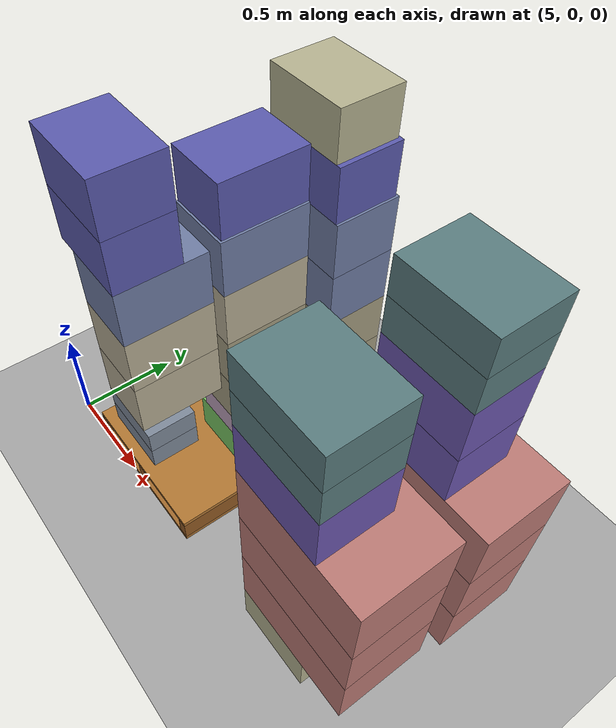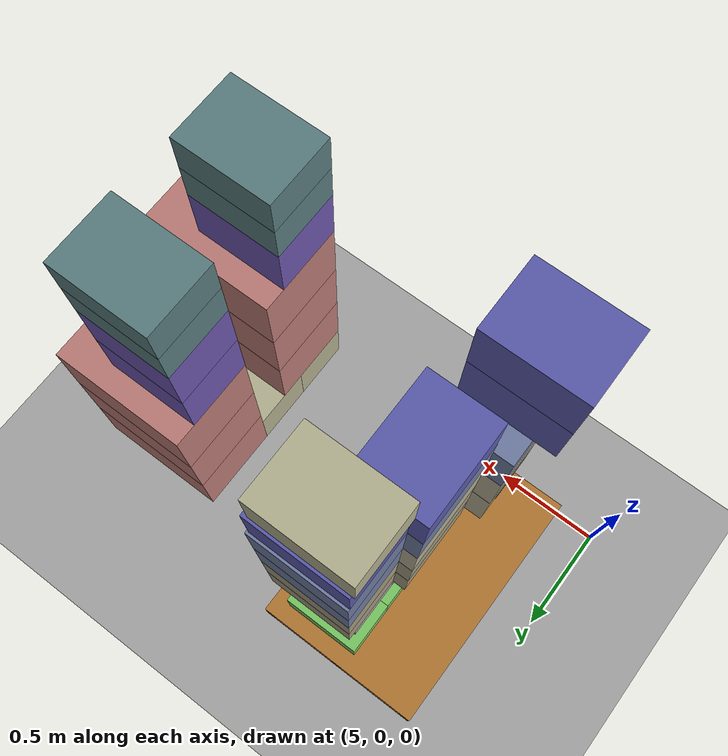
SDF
<sdf version="1.10">
 <world name="pallet_towers">
  <model name="ground_plane">
   <static>true</static>
   <link name="link">
    <collision name="collision">
     <geometry><plane><normal>0 0 1</normal><size>30 30</size></plane></geometry>
     <surface>
      <friction><ode><mu>0.55</mu><mu2>0.55</mu2></ode></friction>
      <bounce><restitution_coefficient>0</restitution_coefficient><threshold>100000</threshold></bounce>
      <contact><ode><kp>1000000</kp><kd>100</kd><max_vel>1</max_vel><min_depth>0.0005</min_depth></ode></contact>
     </surface>
    </collision>
    <visual name="visual">
     <geometry><plane><normal>0 0 1</normal><size>30 30</size></plane></geometry>
     <material><ambient>0.65 0.65 0.65 1</ambient><diffuse>0.65 0.65 0.65 1</diffuse></material>
    </visual>
   </link>
  </model>
  <model name="pallet_05_P05">
   <static>false</static>
   <pose>5.6 0.6 0.002 0 0 0</pose>
   <allow_auto_disable>false</allow_auto_disable>
   <link name="body">
    <inertial>
     <pose>0 0 0.072 0 0 0</pose>
     <mass>25</mass>
     <inertia>
      <ixx>3.07216082</ixx>
      <ixy>0</ixy>
      <ixz>0</ixz>
      <iyy>1.70896776</iyy>
      <iyz>0</iyz>
      <izz>4.63680694</izz>
     </inertia>
    </inertial>
    <collision name="bottom_deck_collision">
     <pose>0 0 0.011 0 0 0</pose>
     <geometry><box><size>0.8 1.2 0.022</size></box></geometry>
     <surface>
      <friction><ode><mu>0.55</mu><mu2>0.55</mu2></ode></friction>
      <bounce><restitution_coefficient>0</restitution_coefficient><threshold>100000</threshold></bounce>
      <contact><ode><kp>1000000</kp><kd>100</kd><max_vel>1</max_vel><min_depth>0.0005</min_depth></ode></contact>
     </surface>
    </collision>
    <visual name="bottom_deck_visual">
     <pose>0 0 0.011 0 0 0</pose>
     <geometry><box><size>0.8 1.2 0.022</size></box></geometry>
     <material>
      <ambient>0.46 0.28 0.10 1</ambient>
      <diffuse>0.64 0.42 0.18 1</diffuse>
      <specular>0.03 0.03 0.03 1</specular>
     </material>
    </visual>
    <collision name="left_stringer_collision">
     <pose>-0.375 0 0.072 0 0 0</pose>
     <geometry><box><size>0.05 1.2 0.1</size></box></geometry>
     <surface>
      <friction><ode><mu>0.55</mu><mu2>0.55</mu2></ode></friction>
      <bounce><restitution_coefficient>0</restitution_coefficient><threshold>100000</threshold></bounce>
      <contact><ode><kp>1000000</kp><kd>100</kd><max_vel>1</max_vel><min_depth>0.0005</min_depth></ode></contact>
     </surface>
    </collision>
    <visual name="left_stringer_visual">
     <pose>-0.375 0 0.072 0 0 0</pose>
     <geometry><box><size>0.05 1.2 0.1</size></box></geometry>
     <material>
      <ambient>0.42 0.25 0.09 1</ambient>
      <diffuse>0.58 0.36 0.14 1</diffuse>
      <specular>0.03 0.03 0.03 1</specular>
     </material>
    </visual>
    <collision name="centre_stringer_collision">
     <pose>0 0 0.072 0 0 0</pose>
     <geometry><box><size>0.05 1.2 0.1</size></box></geometry>
     <surface>
      <friction><ode><mu>0.55</mu><mu2>0.55</mu2></ode></friction>
      <bounce><restitution_coefficient>0</restitution_coefficient><threshold>100000</threshold></bounce>
      <contact><ode><kp>1000000</kp><kd>100</kd><max_vel>1</max_vel><min_depth>0.0005</min_depth></ode></contact>
     </surface>
    </collision>
    <visual name="centre_stringer_visual">
     <pose>0 0 0.072 0 0 0</pose>
     <geometry><box><size>0.05 1.2 0.1</size></box></geometry>
     <material>
      <ambient>0.42 0.25 0.09 1</ambient>
      <diffuse>0.58 0.36 0.14 1</diffuse>
      <specular>0.03 0.03 0.03 1</specular>
     </material>
    </visual>
    <collision name="right_stringer_collision">
     <pose>0.375 0 0.072 0 0 0</pose>
     <geometry><box><size>0.05 1.2 0.1</size></box></geometry>
     <surface>
      <friction><ode><mu>0.55</mu><mu2>0.55</mu2></ode></friction>
      <bounce><restitution_coefficient>0</restitution_coefficient><threshold>100000</threshold></bounce>
      <contact><ode><kp>1000000</kp><kd>100</kd><max_vel>1</max_vel><min_depth>0.0005</min_depth></ode></contact>
     </surface>
    </collision>
    <visual name="right_stringer_visual">
     <pose>0.375 0 0.072 0 0 0</pose>
     <geometry><box><size>0.05 1.2 0.1</size></box></geometry>
     <material>
      <ambient>0.42 0.25 0.09 1</ambient>
      <diffuse>0.58 0.36 0.14 1</diffuse>
      <specular>0.03 0.03 0.03 1</specular>
     </material>
    </visual>
    <collision name="top_deck_collision">
     <pose>0 0 0.133 0 0 0</pose>
     <geometry><box><size>0.8 1.2 0.022</size></box></geometry>
     <surface>
      <friction><ode><mu>0.55</mu><mu2>0.55</mu2></ode></friction>
      <bounce><restitution_coefficient>0</restitution_coefficient><threshold>100000</threshold></bounce>
      <contact><ode><kp>1000000</kp><kd>100</kd><max_vel>1</max_vel><min_depth>0.0005</min_depth></ode></contact>
     </surface>
    </collision>
    <visual name="top_deck_visual">
     <pose>0 0 0.133 0 0 0</pose>
     <geometry><box><size>0.8 1.2 0.022</size></box></geometry>
     <material>
      <ambient>0.50 0.31 0.11 1</ambient>
      <diffuse>0.70 0.47 0.20 1</diffuse>
      <specular>0.03 0.03 0.03 1</specular>
     </material>
    </visual>
   </link>
  </model>
  <model name="box_p05_0003_TEA_002_TEA">
   <static>false</static>
   <pose>5.74 0.52 0.246 0 0 0</pose>
   <link name="body">
    <inertial>
     <mass>5</mass>
     <inertia>
      <ixx>0.0406666667</ixx>
      <ixy>0</ixy>
      <ixz>0</ixz>
      <iyy>0.0706666667</iyy>
      <iyz>0</iyz>
      <izz>0.078</izz>
     </inertia>
    </inertial>
    <collision name="collision">
     <geometry><box><size>0.36 0.24 0.2</size></box></geometry>
     <surface>
      <friction><ode><mu>0.55</mu><mu2>0.55</mu2></ode></friction>
      <bounce><restitution_coefficient>0</restitution_coefficient><threshold>100000</threshold></bounce>
      <contact><ode><kp>1000000</kp><kd>100</kd><max_vel>1</max_vel><min_depth>0.0005</min_depth></ode></contact>
     </surface>
    </collision>
    <visual name="visual">
     <geometry><box><size>0.36 0.24 0.2</size></box></geometry>
     <material>
      <ambient>0.478431373 0.788235294 0.388235294 1</ambient>
      <diffuse>0.478431373 0.788235294 0.388235294 1</diffuse>
      <specular>0.05 0.05 0.05 1</specular>
     </material>
    </visual>
   </link>
  </model>
  <model name="box_p05_0005_TEA_004_TEA">
   <static>false</static>
   <pose>5.74 0.76 0.246 0 0 0</pose>
   <link name="body">
    <inertial>
     <mass>5</mass>
     <inertia>
      <ixx>0.0406666667</ixx>
      <ixy>0</ixy>
      <ixz>0</ixz>
      <iyy>0.0706666667</iyy>
      <iyz>0</iyz>
      <izz>0.078</izz>
     </inertia>
    </inertial>
    <collision name="collision">
     <geometry><box><size>0.36 0.24 0.2</size></box></geometry>
     <surface>
      <friction><ode><mu>0.55</mu><mu2>0.55</mu2></ode></friction>
      <bounce><restitution_coefficient>0</restitution_coefficient><threshold>100000</threshold></bounce>
      <contact><ode><kp>1000000</kp><kd>100</kd><max_vel>1</max_vel><min_depth>0.0005</min_depth></ode></contact>
     </surface>
    </collision>
    <visual name="visual">
     <geometry><box><size>0.36 0.24 0.2</size></box></geometry>
     <material>
      <ambient>0.478431373 0.788235294 0.388235294 1</ambient>
      <diffuse>0.478431373 0.788235294 0.388235294 1</diffuse>
      <specular>0.05 0.05 0.05 1</specular>
     </material>
    </visual>
   </link>
  </model>
  <model name="box_p05_0007_TEA_006_TEA">
   <static>false</static>
   <pose>5.74 1 0.246 0 0 0</pose>
   <link name="body">
    <inertial>
     <mass>5</mass>
     <inertia>
      <ixx>0.0406666667</ixx>
      <ixy>0</ixy>
      <ixz>0</ixz>
      <iyy>0.0706666667</iyy>
      <iyz>0</iyz>
      <izz>0.078</izz>
     </inertia>
    </inertial>
    <collision name="collision">
     <geometry><box><size>0.36 0.24 0.2</size></box></geometry>
     <surface>
      <friction><ode><mu>0.55</mu><mu2>0.55</mu2></ode></friction>
      <bounce><restitution_coefficient>0</restitution_coefficient><threshold>100000</threshold></bounce>
      <contact><ode><kp>1000000</kp><kd>100</kd><max_vel>1</max_vel><min_depth>0.0005</min_depth></ode></contact>
     </surface>
    </collision>
    <visual name="visual">
     <geometry><box><size>0.36 0.24 0.2</size></box></geometry>
     <material>
      <ambient>0.478431373 0.788235294 0.388235294 1</ambient>
      <diffuse>0.478431373 0.788235294 0.388235294 1</diffuse>
      <specular>0.05 0.05 0.05 1</specular>
     </material>
    </visual>
   </link>
  </model>
  <model name="box_p05_0009_BEER24_002_BEER24">
   <static>false</static>
   <pose>5.73 0.6 0.411 0 0 0</pose>
   <link name="body">
    <inertial>
     <mass>9</mass>
     <inertia><ixx>0.132675</ixx><ixy>0</ixy><ixz>0</ixz><iyy>0.063375</iyy><iyz>0</iyz><izz>0.1707</izz></inertia>
    </inertial>
    <collision name="collision">
     <geometry><box><size>0.26 0.4 0.13</size></box></geometry>
     <surface>
      <friction><ode><mu>0.55</mu><mu2>0.55</mu2></ode></friction>
      <bounce><restitution_coefficient>0</restitution_coefficient><threshold>100000</threshold></bounce>
      <contact><ode><kp>1000000</kp><kd>100</kd><max_vel>1</max_vel><min_depth>0.0005</min_depth></ode></contact>
     </surface>
    </collision>
    <visual name="visual">
     <geometry><box><size>0.26 0.4 0.13</size></box></geometry>
     <material>
      <ambient>0.741176471 0.62745098 0.737254902 1</ambient>
      <diffuse>0.741176471 0.62745098 0.737254902 1</diffuse>
      <specular>0.05 0.05 0.05 1</specular>
     </material>
    </visual>
   </link>
  </model>
  <model name="box_p05_0011_BEER24_004_BEER24">
   <static>false</static>
   <pose>5.8 0.93 0.411 0 0 0</pose>
   <link name="body">
    <inertial>
     <mass>9</mass>
     <inertia><ixx>0.063375</ixx><ixy>0</ixy><ixz>0</ixz><iyy>0.132675</iyy><iyz>0</iyz><izz>0.1707</izz></inertia>
    </inertial>
    <collision name="collision">
     <geometry><box><size>0.4 0.26 0.13</size></box></geometry>
     <surface>
      <friction><ode><mu>0.55</mu><mu2>0.55</mu2></ode></friction>
      <bounce><restitution_coefficient>0</restitution_coefficient><threshold>100000</threshold></bounce>
      <contact><ode><kp>1000000</kp><kd>100</kd><max_vel>1</max_vel><min_depth>0.0005</min_depth></ode></contact>
     </surface>
    </collision>
    <visual name="visual">
     <geometry><box><size>0.4 0.26 0.13</size></box></geometry>
     <material>
      <ambient>0.741176471 0.62745098 0.737254902 1</ambient>
      <diffuse>0.741176471 0.62745098 0.737254902 1</diffuse>
      <specular>0.05 0.05 0.05 1</specular>
     </material>
    </visual>
   </link>
  </model>
  <model name="box_p05_0014_DOGFOOD_001_DOGFOOD">
   <static>false</static>
   <pose>5.63 0.115 0.451 0 0 0</pose>
   <link name="body">
    <inertial>
     <mass>8</mass>
     <inertia>
      <ixx>0.0433333333</ixx>
      <ixy>0</ixy>
      <ixz>0</ixz>
      <iyy>0.0851333333</iyy>
      <iyz>0</iyz>
      <izz>0.112333333</izz>
     </inertia>
    </inertial>
    <collision name="collision">
     <geometry><box><size>0.34 0.23 0.11</size></box></geometry>
     <surface>
      <friction><ode><mu>0.55</mu><mu2>0.55</mu2></ode></friction>
      <bounce><restitution_coefficient>0</restitution_coefficient><threshold>100000</threshold></bounce>
      <contact><ode><kp>1000000</kp><kd>100</kd><max_vel>1</max_vel><min_depth>0.0005</min_depth></ode></contact>
     </surface>
    </collision>
    <visual name="visual">
     <geometry><box><size>0.34 0.23 0.11</size></box></geometry>
     <material>
      <ambient>0.498039216 0.545098039 0.607843137 1</ambient>
      <diffuse>0.498039216 0.545098039 0.607843137 1</diffuse>
      <specular>0.05 0.05 0.05 1</specular>
     </material>
    </visual>
   </link>
  </model>
  <model name="box_p05_0015_DOGFOOD_002_DOGFOOD">
   <static>false</static>
   <pose>5.63 0.115 0.561 0 0 0</pose>
   <link name="body">
    <inertial>
     <mass>8</mass>
     <inertia>
      <ixx>0.0433333333</ixx>
      <ixy>0</ixy>
      <ixz>0</ixz>
      <iyy>0.0851333333</iyy>
      <iyz>0</iyz>
      <izz>0.112333333</izz>
     </inertia>
    </inertial>
    <collision name="collision">
     <geometry><box><size>0.34 0.23 0.11</size></box></geometry>
     <surface>
      <friction><ode><mu>0.55</mu><mu2>0.55</mu2></ode></friction>
      <bounce><restitution_coefficient>0</restitution_coefficient><threshold>100000</threshold></bounce>
      <contact><ode><kp>1000000</kp><kd>100</kd><max_vel>1</max_vel><min_depth>0.0005</min_depth></ode></contact>
     </surface>
    </collision>
    <visual name="visual">
     <geometry><box><size>0.34 0.23 0.11</size></box></geometry>
     <material>
      <ambient>0.498039216 0.545098039 0.607843137 1</ambient>
      <diffuse>0.498039216 0.545098039 0.607843137 1</diffuse>
      <specular>0.05 0.05 0.05 1</specular>
     </material>
    </visual>
   </link>
  </model>
  <model name="box_p05_0020_MILK12_001_MILK12">
   <static>false</static>
   <pose>5.69 0.6 0.601 0 0 0</pose>
   <link name="body">
    <inertial>
     <mass>12.5</mass>
     <inertia>
      <ixx>0.231770833</ixx>
      <ixy>0</ixy>
      <ixz>0</ixz>
      <iyy>0.158854167</iyy>
      <iyz>0</iyz>
      <izz>0.260416667</izz>
     </inertia>
    </inertial>
    <collision name="collision">
     <geometry><box><size>0.3 0.4 0.25</size></box></geometry>
     <surface>
      <friction><ode><mu>0.55</mu><mu2>0.55</mu2></ode></friction>
      <bounce><restitution_coefficient>0</restitution_coefficient><threshold>100000</threshold></bounce>
      <contact><ode><kp>1000000</kp><kd>100</kd><max_vel>1</max_vel><min_depth>0.0005</min_depth></ode></contact>
     </surface>
    </collision>
    <visual name="visual">
     <geometry><box><size>0.3 0.4 0.25</size></box></geometry>
     <material>
      <ambient>0.647058824 0.615686275 0.505882353 1</ambient>
      <diffuse>0.647058824 0.615686275 0.505882353 1</diffuse>
      <specular>0.05 0.05 0.05 1</specular>
     </material>
    </visual>
   </link>
  </model>
  <model name="box_p05_0022_MILK12_003_MILK12">
   <static>false</static>
   <pose>5.8 0.95 0.601 0 0 0</pose>
   <link name="body">
    <inertial>
     <mass>12.5</mass>
     <inertia>
      <ixx>0.158854167</ixx>
      <ixy>0</ixy>
      <ixz>0</ixz>
      <iyy>0.231770833</iyy>
      <iyz>0</iyz>
      <izz>0.260416667</izz>
     </inertia>
    </inertial>
    <collision name="collision">
     <geometry><box><size>0.4 0.3 0.25</size></box></geometry>
     <surface>
      <friction><ode><mu>0.55</mu><mu2>0.55</mu2></ode></friction>
      <bounce><restitution_coefficient>0</restitution_coefficient><threshold>100000</threshold></bounce>
      <contact><ode><kp>1000000</kp><kd>100</kd><max_vel>1</max_vel><min_depth>0.0005</min_depth></ode></contact>
     </surface>
    </collision>
    <visual name="visual">
     <geometry><box><size>0.4 0.3 0.25</size></box></geometry>
     <material>
      <ambient>0.647058824 0.615686275 0.505882353 1</ambient>
      <diffuse>0.647058824 0.615686275 0.505882353 1</diffuse>
      <specular>0.05 0.05 0.05 1</specular>
     </material>
    </visual>
   </link>
  </model>
  <model name="box_p05_0023_MILK12_004_MILK12">
   <static>false</static>
   <pose>5.69 0.6 0.851 0 0 0</pose>
   <link name="body">
    <inertial>
     <mass>12.5</mass>
     <inertia>
      <ixx>0.231770833</ixx>
      <ixy>0</ixy>
      <ixz>0</ixz>
      <iyy>0.158854167</iyy>
      <iyz>0</iyz>
      <izz>0.260416667</izz>
     </inertia>
    </inertial>
    <collision name="collision">
     <geometry><box><size>0.3 0.4 0.25</size></box></geometry>
     <surface>
      <friction><ode><mu>0.55</mu><mu2>0.55</mu2></ode></friction>
      <bounce><restitution_coefficient>0</restitution_coefficient><threshold>100000</threshold></bounce>
      <contact><ode><kp>1000000</kp><kd>100</kd><max_vel>1</max_vel><min_depth>0.0005</min_depth></ode></contact>
     </surface>
    </collision>
    <visual name="visual">
     <geometry><box><size>0.3 0.4 0.25</size></box></geometry>
     <material>
      <ambient>0.647058824 0.615686275 0.505882353 1</ambient>
      <diffuse>0.647058824 0.615686275 0.505882353 1</diffuse>
      <specular>0.05 0.05 0.05 1</specular>
     </material>
    </visual>
   </link>
  </model>
  <model name="box_p05_0025_MILK12_006_MILK12">
   <static>false</static>
   <pose>5.8 0.95 0.851 0 0 0</pose>
   <link name="body">
    <inertial>
     <mass>12.5</mass>
     <inertia>
      <ixx>0.158854167</ixx>
      <ixy>0</ixy>
      <ixz>0</ixz>
      <iyy>0.231770833</iyy>
      <iyz>0</iyz>
      <izz>0.260416667</izz>
     </inertia>
    </inertial>
    <collision name="collision">
     <geometry><box><size>0.4 0.3 0.25</size></box></geometry>
     <surface>
      <friction><ode><mu>0.55</mu><mu2>0.55</mu2></ode></friction>
      <bounce><restitution_coefficient>0</restitution_coefficient><threshold>100000</threshold></bounce>
      <contact><ode><kp>1000000</kp><kd>100</kd><max_vel>1</max_vel><min_depth>0.0005</min_depth></ode></contact>
     </surface>
    </collision>
    <visual name="visual">
     <geometry><box><size>0.4 0.3 0.25</size></box></geometry>
     <material>
      <ambient>0.647058824 0.615686275 0.505882353 1</ambient>
      <diffuse>0.647058824 0.615686275 0.505882353 1</diffuse>
      <specular>0.05 0.05 0.05 1</specular>
     </material>
    </visual>
   </link>
  </model>
  <model name="box_p05_0027_WATER24_002_WATER24">
   <static>false</static>
   <pose>5.61 0.2 0.751 0 0 0</pose>
   <link name="body">
    <inertial>
     <mass>13</mass>
     <inertia>
      <ixx>0.252308333</ixx>
      <ixy>0</ixy>
      <ixz>0</ixz>
      <iyy>0.176475</iyy>
      <iyz>0</iyz>
      <izz>0.270833333</izz>
     </inertia>
    </inertial>
    <collision name="collision">
     <geometry><box><size>0.3 0.4 0.27</size></box></geometry>
     <surface>
      <friction><ode><mu>0.55</mu><mu2>0.55</mu2></ode></friction>
      <bounce><restitution_coefficient>0</restitution_coefficient><threshold>100000</threshold></bounce>
      <contact><ode><kp>1000000</kp><kd>100</kd><max_vel>1</max_vel><min_depth>0.0005</min_depth></ode></contact>
     </surface>
    </collision>
    <visual name="visual">
     <geometry><box><size>0.3 0.4 0.27</size></box></geometry>
     <material>
      <ambient>0.721568627 0.68627451 0.584313725 1</ambient>
      <diffuse>0.721568627 0.68627451 0.584313725 1</diffuse>
      <specular>0.05 0.05 0.05 1</specular>
     </material>
    </visual>
   </link>
  </model>
  <model name="box_p05_0029_WATER24_004_WATER24">
   <static>false</static>
   <pose>5.61 0.2 1.021 0 0 0</pose>
   <link name="body">
    <inertial>
     <mass>13</mass>
     <inertia>
      <ixx>0.252308333</ixx>
      <ixy>0</ixy>
      <ixz>0</ixz>
      <iyy>0.176475</iyy>
      <iyz>0</iyz>
      <izz>0.270833333</izz>
     </inertia>
    </inertial>
    <collision name="collision">
     <geometry><box><size>0.3 0.4 0.27</size></box></geometry>
     <surface>
      <friction><ode><mu>0.55</mu><mu2>0.55</mu2></ode></friction>
      <bounce><restitution_coefficient>0</restitution_coefficient><threshold>100000</threshold></bounce>
      <contact><ode><kp>1000000</kp><kd>100</kd><max_vel>1</max_vel><min_depth>0.0005</min_depth></ode></contact>
     </surface>
    </collision>
    <visual name="visual">
     <geometry><box><size>0.3 0.4 0.27</size></box></geometry>
     <material>
      <ambient>0.721568627 0.68627451 0.584313725 1</ambient>
      <diffuse>0.721568627 0.68627451 0.584313725 1</diffuse>
      <specular>0.05 0.05 0.05 1</specular>
     </material>
    </visual>
   </link>
  </model>
  <model name="box_p05_0030_WATER24_005_WATER24">
   <static>false</static>
   <pose>5.69 0.6 1.111 0 0 0</pose>
   <link name="body">
    <inertial>
     <mass>13</mass>
     <inertia>
      <ixx>0.252308333</ixx>
      <ixy>0</ixy>
      <ixz>0</ixz>
      <iyy>0.176475</iyy>
      <iyz>0</iyz>
      <izz>0.270833333</izz>
     </inertia>
    </inertial>
    <collision name="collision">
     <geometry><box><size>0.3 0.4 0.27</size></box></geometry>
     <surface>
      <friction><ode><mu>0.55</mu><mu2>0.55</mu2></ode></friction>
      <bounce><restitution_coefficient>0</restitution_coefficient><threshold>100000</threshold></bounce>
      <contact><ode><kp>1000000</kp><kd>100</kd><max_vel>1</max_vel><min_depth>0.0005</min_depth></ode></contact>
     </surface>
    </collision>
    <visual name="visual">
     <geometry><box><size>0.3 0.4 0.27</size></box></geometry>
     <material>
      <ambient>0.721568627 0.68627451 0.584313725 1</ambient>
      <diffuse>0.721568627 0.68627451 0.584313725 1</diffuse>
      <specular>0.05 0.05 0.05 1</specular>
     </material>
    </visual>
   </link>
  </model>
  <model name="box_p05_0032_COLA24_001_COLA24">
   <static>false</static>
   <pose>5.8 0.95 1.106 0 0 0</pose>
   <link name="body">
    <inertial>
     <mass>13.5</mass>
     <inertia><ixx>0.1773</ixx><ixy>0</ixy><ixz>0</ixz><iyy>0.25605</iyy><iyz>0</iyz><izz>0.28125</izz></inertia>
    </inertial>
    <collision name="collision">
     <geometry><box><size>0.4 0.3 0.26</size></box></geometry>
     <surface>
      <friction><ode><mu>0.55</mu><mu2>0.55</mu2></ode></friction>
      <bounce><restitution_coefficient>0</restitution_coefficient><threshold>100000</threshold></bounce>
      <contact><ode><kp>1000000</kp><kd>100</kd><max_vel>1</max_vel><min_depth>0.0005</min_depth></ode></contact>
     </surface>
    </collision>
    <visual name="visual">
     <geometry><box><size>0.4 0.3 0.26</size></box></geometry>
     <material>
      <ambient>0.439215686 0.494117647 0.647058824 1</ambient>
      <diffuse>0.439215686 0.494117647 0.647058824 1</diffuse>
      <specular>0.05 0.05 0.05 1</specular>
     </material>
    </visual>
   </link>
  </model>
  <model name="box_p05_0033_COLA24_002_COLA24">
   <static>false</static>
   <pose>5.8 0.95 1.366 0 0 0</pose>
   <link name="body">
    <inertial>
     <mass>13.5</mass>
     <inertia><ixx>0.1773</ixx><ixy>0</ixy><ixz>0</ixz><iyy>0.25605</iyy><iyz>0</iyz><izz>0.28125</izz></inertia>
    </inertial>
    <collision name="collision">
     <geometry><box><size>0.4 0.3 0.26</size></box></geometry>
     <surface>
      <friction><ode><mu>0.55</mu><mu2>0.55</mu2></ode></friction>
      <bounce><restitution_coefficient>0</restitution_coefficient><threshold>100000</threshold></bounce>
      <contact><ode><kp>1000000</kp><kd>100</kd><max_vel>1</max_vel><min_depth>0.0005</min_depth></ode></contact>
     </surface>
    </collision>
    <visual name="visual">
     <geometry><box><size>0.4 0.3 0.26</size></box></geometry>
     <material>
      <ambient>0.439215686 0.494117647 0.647058824 1</ambient>
      <diffuse>0.439215686 0.494117647 0.647058824 1</diffuse>
      <specular>0.05 0.05 0.05 1</specular>
     </material>
    </visual>
   </link>
  </model>
  <model name="box_p05_0035_COLA24_004_COLA24">
   <static>false</static>
   <pose>5.61 0.2 1.286 0 0 0</pose>
   <link name="body">
    <inertial>
     <mass>13.5</mass>
     <inertia><ixx>0.25605</ixx><ixy>0</ixy><ixz>0</ixz><iyy>0.1773</iyy><iyz>0</iyz><izz>0.28125</izz></inertia>
    </inertial>
    <collision name="collision">
     <geometry><box><size>0.3 0.4 0.26</size></box></geometry>
     <surface>
      <friction><ode><mu>0.55</mu><mu2>0.55</mu2></ode></friction>
      <bounce><restitution_coefficient>0</restitution_coefficient><threshold>100000</threshold></bounce>
      <contact><ode><kp>1000000</kp><kd>100</kd><max_vel>1</max_vel><min_depth>0.0005</min_depth></ode></contact>
     </surface>
    </collision>
    <visual name="visual">
     <geometry><box><size>0.3 0.4 0.26</size></box></geometry>
     <material>
      <ambient>0.439215686 0.494117647 0.647058824 1</ambient>
      <diffuse>0.439215686 0.494117647 0.647058824 1</diffuse>
      <specular>0.05 0.05 0.05 1</specular>
     </material>
    </visual>
   </link>
  </model>
  <model name="box_p05_0036_COLA24_005_COLA24">
   <static>false</static>
   <pose>5.69 0.6 1.376 0 0 0</pose>
   <link name="body">
    <inertial>
     <mass>13.5</mass>
     <inertia><ixx>0.25605</ixx><ixy>0</ixy><ixz>0</ixz><iyy>0.1773</iyy><iyz>0</iyz><izz>0.28125</izz></inertia>
    </inertial>
    <collision name="collision">
     <geometry><box><size>0.3 0.4 0.26</size></box></geometry>
     <surface>
      <friction><ode><mu>0.55</mu><mu2>0.55</mu2></ode></friction>
      <bounce><restitution_coefficient>0</restitution_coefficient><threshold>100000</threshold></bounce>
      <contact><ode><kp>1000000</kp><kd>100</kd><max_vel>1</max_vel><min_depth>0.0005</min_depth></ode></contact>
     </surface>
    </collision>
    <visual name="visual">
     <geometry><box><size>0.3 0.4 0.26</size></box></geometry>
     <material>
      <ambient>0.439215686 0.494117647 0.647058824 1</ambient>
      <diffuse>0.439215686 0.494117647 0.647058824 1</diffuse>
      <specular>0.05 0.05 0.05 1</specular>
     </material>
    </visual>
   </link>
  </model>
  <model name="box_p05_0039_PASTA_002_PASTA">
   <static>false</static>
   <pose>5.565 0.145 1.536 0 0 0</pose>
   <link name="body">
    <inertial>
     <mass>8</mass>
     <inertia>
      <ixx>0.0944666667</ixx>
      <ixy>0</ixy>
      <ixz>0</ixz>
      <iyy>0.1398</iyy>
      <iyz>0</iyz>
      <izz>0.157466667</izz>
     </inertia>
    </inertial>
    <collision name="collision">
     <geometry><box><size>0.39 0.29 0.24</size></box></geometry>
     <surface>
      <friction><ode><mu>0.55</mu><mu2>0.55</mu2></ode></friction>
      <bounce><restitution_coefficient>0</restitution_coefficient><threshold>100000</threshold></bounce>
      <contact><ode><kp>1000000</kp><kd>100</kd><max_vel>1</max_vel><min_depth>0.0005</min_depth></ode></contact>
     </surface>
    </collision>
    <visual name="visual">
     <geometry><box><size>0.39 0.29 0.24</size></box></geometry>
     <material>
      <ambient>0.356862745 0.356862745 0.682352941 1</ambient>
      <diffuse>0.356862745 0.356862745 0.682352941 1</diffuse>
      <specular>0.05 0.05 0.05 1</specular>
     </material>
    </visual>
   </link>
  </model>
  <model name="box_p05_0041_PASTA_004_PASTA">
   <static>false</static>
   <pose>5.795 0.945 1.616 0 0 0</pose>
   <link name="body">
    <inertial>
     <mass>8</mass>
     <inertia>
      <ixx>0.0944666667</ixx>
      <ixy>0</ixy>
      <ixz>0</ixz>
      <iyy>0.1398</iyy>
      <iyz>0</iyz>
      <izz>0.157466667</izz>
     </inertia>
    </inertial>
    <collision name="collision">
     <geometry><box><size>0.39 0.29 0.24</size></box></geometry>
     <surface>
      <friction><ode><mu>0.55</mu><mu2>0.55</mu2></ode></friction>
      <bounce><restitution_coefficient>0</restitution_coefficient><threshold>100000</threshold></bounce>
      <contact><ode><kp>1000000</kp><kd>100</kd><max_vel>1</max_vel><min_depth>0.0005</min_depth></ode></contact>
     </surface>
    </collision>
    <visual name="visual">
     <geometry><box><size>0.39 0.29 0.24</size></box></geometry>
     <material>
      <ambient>0.356862745 0.356862745 0.682352941 1</ambient>
      <diffuse>0.356862745 0.356862745 0.682352941 1</diffuse>
      <specular>0.05 0.05 0.05 1</specular>
     </material>
    </visual>
   </link>
  </model>
  <model name="box_p05_0042_PASTA_005_PASTA">
   <static>false</static>
   <pose>5.685 0.605 1.626 0 0 0</pose>
   <link name="body">
    <inertial>
     <mass>8</mass>
     <inertia>
      <ixx>0.1398</ixx>
      <ixy>0</ixy>
      <ixz>0</ixz>
      <iyy>0.0944666667</iyy>
      <iyz>0</iyz>
      <izz>0.157466667</izz>
     </inertia>
    </inertial>
    <collision name="collision">
     <geometry><box><size>0.29 0.39 0.24</size></box></geometry>
     <surface>
      <friction><ode><mu>0.55</mu><mu2>0.55</mu2></ode></friction>
      <bounce><restitution_coefficient>0</restitution_coefficient><threshold>100000</threshold></bounce>
      <contact><ode><kp>1000000</kp><kd>100</kd><max_vel>1</max_vel><min_depth>0.0005</min_depth></ode></contact>
     </surface>
    </collision>
    <visual name="visual">
     <geometry><box><size>0.29 0.39 0.24</size></box></geometry>
     <material>
      <ambient>0.356862745 0.356862745 0.682352941 1</ambient>
      <diffuse>0.356862745 0.356862745 0.682352941 1</diffuse>
      <specular>0.05 0.05 0.05 1</specular>
     </material>
    </visual>
   </link>
  </model>
  <model name="box_p05_0043_PASTA_006_PASTA">
   <static>false</static>
   <pose>5.565 0.145 1.776 0 0 0</pose>
   <link name="body">
    <inertial>
     <mass>8</mass>
     <inertia>
      <ixx>0.0944666667</ixx>
      <ixy>0</ixy>
      <ixz>0</ixz>
      <iyy>0.1398</iyy>
      <iyz>0</iyz>
      <izz>0.157466667</izz>
     </inertia>
    </inertial>
    <collision name="collision">
     <geometry><box><size>0.39 0.29 0.24</size></box></geometry>
     <surface>
      <friction><ode><mu>0.55</mu><mu2>0.55</mu2></ode></friction>
      <bounce><restitution_coefficient>0</restitution_coefficient><threshold>100000</threshold></bounce>
      <contact><ode><kp>1000000</kp><kd>100</kd><max_vel>1</max_vel><min_depth>0.0005</min_depth></ode></contact>
     </surface>
    </collision>
    <visual name="visual">
     <geometry><box><size>0.39 0.29 0.24</size></box></geometry>
     <material>
      <ambient>0.356862745 0.356862745 0.682352941 1</ambient>
      <diffuse>0.356862745 0.356862745 0.682352941 1</diffuse>
      <specular>0.05 0.05 0.05 1</specular>
     </material>
    </visual>
   </link>
  </model>
  <model name="box_p05_0045_TOMATO_002_TOMATO">
   <static>false</static>
   <pose>5.78 0.94 1.841 0 0 0</pose>
   <link name="body">
    <inertial>
     <mass>9</mass>
     <inertia><ixx>0.091875</ixx><ixy>0</ixy><ixz>0</ixz><iyy>0.141375</iyy><iyz>0</iyz><izz>0.1671</izz></inertia>
    </inertial>
    <collision name="collision">
     <geometry><box><size>0.38 0.28 0.21</size></box></geometry>
     <surface>
      <friction><ode><mu>0.55</mu><mu2>0.55</mu2></ode></friction>
      <bounce><restitution_coefficient>0</restitution_coefficient><threshold>100000</threshold></bounce>
      <contact><ode><kp>1000000</kp><kd>100</kd><max_vel>1</max_vel><min_depth>0.0005</min_depth></ode></contact>
     </surface>
    </collision>
    <visual name="visual">
     <geometry><box><size>0.38 0.28 0.21</size></box></geometry>
     <material>
      <ambient>0.71372549 0.701960784 0.568627451 1</ambient>
      <diffuse>0.71372549 0.701960784 0.568627451 1</diffuse>
      <specular>0.05 0.05 0.05 1</specular>
     </material>
    </visual>
   </link>
  </model>
  <model name="box_p06_0001_TOMATO_003_TOMATO">
   <static>false</static>
   <pose>6.69 0.14 0.251 0 0 0</pose>
   <link name="body">
    <inertial>
     <mass>9</mass>
     <inertia><ixx>0.091875</ixx><ixy>0</ixy><ixz>0</ixz><iyy>0.141375</iyy><iyz>0</iyz><izz>0.1671</izz></inertia>
    </inertial>
    <collision name="collision">
     <geometry><box><size>0.38 0.28 0.21</size></box></geometry>
     <surface>
      <friction><ode><mu>0.55</mu><mu2>0.55</mu2></ode></friction>
      <bounce><restitution_coefficient>0</restitution_coefficient><threshold>100000</threshold></bounce>
      <contact><ode><kp>1000000</kp><kd>100</kd><max_vel>1</max_vel><min_depth>0.0005</min_depth></ode></contact>
     </surface>
    </collision>
    <visual name="visual">
     <geometry><box><size>0.38 0.28 0.21</size></box></geometry>
     <material>
      <ambient>0.71372549 0.701960784 0.568627451 1</ambient>
      <diffuse>0.71372549 0.701960784 0.568627451 1</diffuse>
      <specular>0.05 0.05 0.05 1</specular>
     </material>
    </visual>
   </link>
  </model>
  <model name="box_p06_0003_TOMATO_005_TOMATO">
   <static>false</static>
   <pose>6.69 0.42 0.251 0 0 0</pose>
   <link name="body">
    <inertial>
     <mass>9</mass>
     <inertia><ixx>0.091875</ixx><ixy>0</ixy><ixz>0</ixz><iyy>0.141375</iyy><iyz>0</iyz><izz>0.1671</izz></inertia>
    </inertial>
    <collision name="collision">
     <geometry><box><size>0.38 0.28 0.21</size></box></geometry>
     <surface>
      <friction><ode><mu>0.55</mu><mu2>0.55</mu2></ode></friction>
      <bounce><restitution_coefficient>0</restitution_coefficient><threshold>100000</threshold></bounce>
      <contact><ode><kp>1000000</kp><kd>100</kd><max_vel>1</max_vel><min_depth>0.0005</min_depth></ode></contact>
     </surface>
    </collision>
    <visual name="visual">
     <geometry><box><size>0.38 0.28 0.21</size></box></geometry>
     <material>
      <ambient>0.71372549 0.701960784 0.568627451 1</ambient>
      <diffuse>0.71372549 0.701960784 0.568627451 1</diffuse>
      <specular>0.05 0.05 0.05 1</specular>
     </material>
    </visual>
   </link>
  </model>
  <model name="box_p06_0005_CEREAL_001_CEREAL">
   <static>false</static>
   <pose>6.8 0.76 0.296 0 0 0</pose>
   <link name="body">
    <inertial>
     <mass>4</mass>
     <inertia>
      <ixx>0.0833333333</ixx>
      <ixy>0</ixy>
      <ixz>0</ixz>
      <iyy>0.15</iyy>
      <iyz>0</iyz>
      <izz>0.173333333</izz>
     </inertia>
    </inertial>
    <collision name="collision">
     <geometry><box><size>0.6 0.4 0.3</size></box></geometry>
     <surface>
      <friction><ode><mu>0.55</mu><mu2>0.55</mu2></ode></friction>
      <bounce><restitution_coefficient>0</restitution_coefficient><threshold>100000</threshold></bounce>
      <contact><ode><kp>1000000</kp><kd>100</kd><max_vel>1</max_vel><min_depth>0.0005</min_depth></ode></contact>
     </surface>
    </collision>
    <visual name="visual">
     <geometry><box><size>0.6 0.4 0.3</size></box></geometry>
     <material>
      <ambient>0.741176471 0.48627451 0.462745098 1</ambient>
      <diffuse>0.741176471 0.48627451 0.462745098 1</diffuse>
      <specular>0.05 0.05 0.05 1</specular>
     </material>
    </visual>
   </link>
  </model>
  <model name="box_p06_0006_CEREAL_002_CEREAL">
   <static>false</static>
   <pose>6.8 0.76 0.596 0 0 0</pose>
   <link name="body">
    <inertial>
     <mass>4</mass>
     <inertia>
      <ixx>0.0833333333</ixx>
      <ixy>0</ixy>
      <ixz>0</ixz>
      <iyy>0.15</iyy>
      <iyz>0</iyz>
      <izz>0.173333333</izz>
     </inertia>
    </inertial>
    <collision name="collision">
     <geometry><box><size>0.6 0.4 0.3</size></box></geometry>
     <surface>
      <friction><ode><mu>0.55</mu><mu2>0.55</mu2></ode></friction>
      <bounce><restitution_coefficient>0</restitution_coefficient><threshold>100000</threshold></bounce>
      <contact><ode><kp>1000000</kp><kd>100</kd><max_vel>1</max_vel><min_depth>0.0005</min_depth></ode></contact>
     </surface>
    </collision>
    <visual name="visual">
     <geometry><box><size>0.6 0.4 0.3</size></box></geometry>
     <material>
      <ambient>0.741176471 0.48627451 0.462745098 1</ambient>
      <diffuse>0.741176471 0.48627451 0.462745098 1</diffuse>
      <specular>0.05 0.05 0.05 1</specular>
     </material>
    </visual>
   </link>
  </model>
  <model name="box_p06_0007_CEREAL_003_CEREAL">
   <static>false</static>
   <pose>6.8 0.2 0.506 0 0 0</pose>
   <link name="body">
    <inertial>
     <mass>4</mass>
     <inertia>
      <ixx>0.0833333333</ixx>
      <ixy>0</ixy>
      <ixz>0</ixz>
      <iyy>0.15</iyy>
      <iyz>0</iyz>
      <izz>0.173333333</izz>
     </inertia>
    </inertial>
    <collision name="collision">
     <geometry><box><size>0.6 0.4 0.3</size></box></geometry>
     <surface>
      <friction><ode><mu>0.55</mu><mu2>0.55</mu2></ode></friction>
      <bounce><restitution_coefficient>0</restitution_coefficient><threshold>100000</threshold></bounce>
      <contact><ode><kp>1000000</kp><kd>100</kd><max_vel>1</max_vel><min_depth>0.0005</min_depth></ode></contact>
     </surface>
    </collision>
    <visual name="visual">
     <geometry><box><size>0.6 0.4 0.3</size></box></geometry>
     <material>
      <ambient>0.741176471 0.48627451 0.462745098 1</ambient>
      <diffuse>0.741176471 0.48627451 0.462745098 1</diffuse>
      <specular>0.05 0.05 0.05 1</specular>
     </material>
    </visual>
   </link>
  </model>
  <model name="box_p06_0008_CEREAL_004_CEREAL">
   <static>false</static>
   <pose>6.8 0.2 0.806 0 0 0</pose>
   <link name="body">
    <inertial>
     <mass>4</mass>
     <inertia>
      <ixx>0.0833333333</ixx>
      <ixy>0</ixy>
      <ixz>0</ixz>
      <iyy>0.15</iyy>
      <iyz>0</iyz>
      <izz>0.173333333</izz>
     </inertia>
    </inertial>
    <collision name="collision">
     <geometry><box><size>0.6 0.4 0.3</size></box></geometry>
     <surface>
      <friction><ode><mu>0.55</mu><mu2>0.55</mu2></ode></friction>
      <bounce><restitution_coefficient>0</restitution_coefficient><threshold>100000</threshold></bounce>
      <contact><ode><kp>1000000</kp><kd>100</kd><max_vel>1</max_vel><min_depth>0.0005</min_depth></ode></contact>
     </surface>
    </collision>
    <visual name="visual">
     <geometry><box><size>0.6 0.4 0.3</size></box></geometry>
     <material>
      <ambient>0.741176471 0.48627451 0.462745098 1</ambient>
      <diffuse>0.741176471 0.48627451 0.462745098 1</diffuse>
      <specular>0.05 0.05 0.05 1</specular>
     </material>
    </visual>
   </link>
  </model>
  <model name="box_p06_0009_CEREAL_005_CEREAL">
   <static>false</static>
   <pose>6.8 0.76 0.896 0 0 0</pose>
   <link name="body">
    <inertial>
     <mass>4</mass>
     <inertia>
      <ixx>0.0833333333</ixx>
      <ixy>0</ixy>
      <ixz>0</ixz>
      <iyy>0.15</iyy>
      <iyz>0</iyz>
      <izz>0.173333333</izz>
     </inertia>
    </inertial>
    <collision name="collision">
     <geometry><box><size>0.6 0.4 0.3</size></box></geometry>
     <surface>
      <friction><ode><mu>0.55</mu><mu2>0.55</mu2></ode></friction>
      <bounce><restitution_coefficient>0</restitution_coefficient><threshold>100000</threshold></bounce>
      <contact><ode><kp>1000000</kp><kd>100</kd><max_vel>1</max_vel><min_depth>0.0005</min_depth></ode></contact>
     </surface>
    </collision>
    <visual name="visual">
     <geometry><box><size>0.6 0.4 0.3</size></box></geometry>
     <material>
      <ambient>0.741176471 0.48627451 0.462745098 1</ambient>
      <diffuse>0.741176471 0.48627451 0.462745098 1</diffuse>
      <specular>0.05 0.05 0.05 1</specular>
     </material>
    </visual>
   </link>
  </model>
  <model name="box_p06_0010_CEREAL_006_CEREAL">
   <static>false</static>
   <pose>6.8 0.2 1.106 0 0 0</pose>
   <link name="body">
    <inertial>
     <mass>4</mass>
     <inertia>
      <ixx>0.0833333333</ixx>
      <ixy>0</ixy>
      <ixz>0</ixz>
      <iyy>0.15</iyy>
      <iyz>0</iyz>
      <izz>0.173333333</izz>
     </inertia>
    </inertial>
    <collision name="collision">
     <geometry><box><size>0.6 0.4 0.3</size></box></geometry>
     <surface>
      <friction><ode><mu>0.55</mu><mu2>0.55</mu2></ode></friction>
      <bounce><restitution_coefficient>0</restitution_coefficient><threshold>100000</threshold></bounce>
      <contact><ode><kp>1000000</kp><kd>100</kd><max_vel>1</max_vel><min_depth>0.0005</min_depth></ode></contact>
     </surface>
    </collision>
    <visual name="visual">
     <geometry><box><size>0.6 0.4 0.3</size></box></geometry>
     <material>
      <ambient>0.741176471 0.48627451 0.462745098 1</ambient>
      <diffuse>0.741176471 0.48627451 0.462745098 1</diffuse>
      <specular>0.05 0.05 0.05 1</specular>
     </material>
    </visual>
   </link>
  </model>
  <model name="box_p06_0011_OATS_001_OATS">
   <static>false</static>
   <pose>6.7 0.71 1.166 0 0 0</pose>
   <link name="body">
    <inertial>
     <mass>7</mass>
     <inertia>
      <ixx>0.0861</ixx>
      <ixy>0</ixy>
      <ixz>0</ixz>
      <iyy>0.126933333</iyy>
      <iyz>0</iyz>
      <izz>0.145833333</izz>
     </inertia>
    </inertial>
    <collision name="collision">
     <geometry><box><size>0.4 0.3 0.24</size></box></geometry>
     <surface>
      <friction><ode><mu>0.55</mu><mu2>0.55</mu2></ode></friction>
      <bounce><restitution_coefficient>0</restitution_coefficient><threshold>100000</threshold></bounce>
      <contact><ode><kp>1000000</kp><kd>100</kd><max_vel>1</max_vel><min_depth>0.0005</min_depth></ode></contact>
     </surface>
    </collision>
    <visual name="visual">
     <geometry><box><size>0.4 0.3 0.24</size></box></geometry>
     <material>
      <ambient>0.42745098 0.345098039 0.690196078 1</ambient>
      <diffuse>0.42745098 0.345098039 0.690196078 1</diffuse>
      <specular>0.05 0.05 0.05 1</specular>
     </material>
    </visual>
   </link>
  </model>
  <model name="box_p06_0013_OATS_003_OATS">
   <static>false</static>
   <pose>6.7 0.71 1.406 0 0 0</pose>
   <link name="body">
    <inertial>
     <mass>7</mass>
     <inertia>
      <ixx>0.0861</ixx>
      <ixy>0</ixy>
      <ixz>0</ixz>
      <iyy>0.126933333</iyy>
      <iyz>0</iyz>
      <izz>0.145833333</izz>
     </inertia>
    </inertial>
    <collision name="collision">
     <geometry><box><size>0.4 0.3 0.24</size></box></geometry>
     <surface>
      <friction><ode><mu>0.55</mu><mu2>0.55</mu2></ode></friction>
      <bounce><restitution_coefficient>0</restitution_coefficient><threshold>100000</threshold></bounce>
      <contact><ode><kp>1000000</kp><kd>100</kd><max_vel>1</max_vel><min_depth>0.0005</min_depth></ode></contact>
     </surface>
    </collision>
    <visual name="visual">
     <geometry><box><size>0.4 0.3 0.24</size></box></geometry>
     <material>
      <ambient>0.42745098 0.345098039 0.690196078 1</ambient>
      <diffuse>0.42745098 0.345098039 0.690196078 1</diffuse>
      <specular>0.05 0.05 0.05 1</specular>
     </material>
    </visual>
   </link>
  </model>
  <model name="box_p06_0015_OATS_005_OATS">
   <static>false</static>
   <pose>6.7 0.15 1.376 0 0 0</pose>
   <link name="body">
    <inertial>
     <mass>7</mass>
     <inertia>
      <ixx>0.0861</ixx>
      <ixy>0</ixy>
      <ixz>0</ixz>
      <iyy>0.126933333</iyy>
      <iyz>0</iyz>
      <izz>0.145833333</izz>
     </inertia>
    </inertial>
    <collision name="collision">
     <geometry><box><size>0.4 0.3 0.24</size></box></geometry>
     <surface>
      <friction><ode><mu>0.55</mu><mu2>0.55</mu2></ode></friction>
      <bounce><restitution_coefficient>0</restitution_coefficient><threshold>100000</threshold></bounce>
      <contact><ode><kp>1000000</kp><kd>100</kd><max_vel>1</max_vel><min_depth>0.0005</min_depth></ode></contact>
     </surface>
    </collision>
    <visual name="visual">
     <geometry><box><size>0.4 0.3 0.24</size></box></geometry>
     <material>
      <ambient>0.42745098 0.345098039 0.690196078 1</ambient>
      <diffuse>0.42745098 0.345098039 0.690196078 1</diffuse>
      <specular>0.05 0.05 0.05 1</specular>
     </material>
    </visual>
   </link>
  </model>
  <model name="box_p06_0017_CHEESE_001_CHEESE">
   <static>false</static>
   <pose>6.7 0.15 1.576 0 0 0</pose>
   <link name="body">
    <inertial>
     <mass>9.5</mass>
     <inertia>
      <ixx>0.0915166667</ixx>
      <ixy>0</ixy>
      <ixz>0</ixz>
      <iyy>0.146933333</iyy>
      <iyz>0</iyz>
      <izz>0.197916667</izz>
     </inertia>
    </inertial>
    <collision name="collision">
     <geometry><box><size>0.4 0.3 0.16</size></box></geometry>
     <surface>
      <friction><ode><mu>0.55</mu><mu2>0.55</mu2></ode></friction>
      <bounce><restitution_coefficient>0</restitution_coefficient><threshold>100000</threshold></bounce>
      <contact><ode><kp>1000000</kp><kd>100</kd><max_vel>1</max_vel><min_depth>0.0005</min_depth></ode></contact>
     </surface>
    </collision>
    <visual name="visual">
     <geometry><box><size>0.4 0.3 0.16</size></box></geometry>
     <material>
      <ambient>0.356862745 0.494117647 0.501960784 1</ambient>
      <diffuse>0.356862745 0.494117647 0.501960784 1</diffuse>
      <specular>0.05 0.05 0.05 1</specular>
     </material>
    </visual>
   </link>
  </model>
  <model name="box_p06_0018_CHEESE_002_CHEESE">
   <static>false</static>
   <pose>6.7 0.15 1.736 0 0 0</pose>
   <link name="body">
    <inertial>
     <mass>9.5</mass>
     <inertia>
      <ixx>0.0915166667</ixx>
      <ixy>0</ixy>
      <ixz>0</ixz>
      <iyy>0.146933333</iyy>
      <iyz>0</iyz>
      <izz>0.197916667</izz>
     </inertia>
    </inertial>
    <collision name="collision">
     <geometry><box><size>0.4 0.3 0.16</size></box></geometry>
     <surface>
      <friction><ode><mu>0.55</mu><mu2>0.55</mu2></ode></friction>
      <bounce><restitution_coefficient>0</restitution_coefficient><threshold>100000</threshold></bounce>
      <contact><ode><kp>1000000</kp><kd>100</kd><max_vel>1</max_vel><min_depth>0.0005</min_depth></ode></contact>
     </surface>
    </collision>
    <visual name="visual">
     <geometry><box><size>0.4 0.3 0.16</size></box></geometry>
     <material>
      <ambient>0.356862745 0.494117647 0.501960784 1</ambient>
      <diffuse>0.356862745 0.494117647 0.501960784 1</diffuse>
      <specular>0.05 0.05 0.05 1</specular>
     </material>
    </visual>
   </link>
  </model>
  <model name="box_p06_0019_CHEESE_003_CHEESE">
   <static>false</static>
   <pose>6.7 0.71 1.606 0 0 0</pose>
   <link name="body">
    <inertial>
     <mass>9.5</mass>
     <inertia>
      <ixx>0.0915166667</ixx>
      <ixy>0</ixy>
      <ixz>0</ixz>
      <iyy>0.146933333</iyy>
      <iyz>0</iyz>
      <izz>0.197916667</izz>
     </inertia>
    </inertial>
    <collision name="collision">
     <geometry><box><size>0.4 0.3 0.16</size></box></geometry>
     <surface>
      <friction><ode><mu>0.55</mu><mu2>0.55</mu2></ode></friction>
      <bounce><restitution_coefficient>0</restitution_coefficient><threshold>100000</threshold></bounce>
      <contact><ode><kp>1000000</kp><kd>100</kd><max_vel>1</max_vel><min_depth>0.0005</min_depth></ode></contact>
     </surface>
    </collision>
    <visual name="visual">
     <geometry><box><size>0.4 0.3 0.16</size></box></geometry>
     <material>
      <ambient>0.356862745 0.494117647 0.501960784 1</ambient>
      <diffuse>0.356862745 0.494117647 0.501960784 1</diffuse>
      <specular>0.05 0.05 0.05 1</specular>
     </material>
    </visual>
   </link>
  </model>
  <model name="box_p06_0020_CHEESE_004_CHEESE">
   <static>false</static>
   <pose>6.7 0.71 1.766 0 0 0</pose>
   <link name="body">
    <inertial>
     <mass>9.5</mass>
     <inertia>
      <ixx>0.0915166667</ixx>
      <ixy>0</ixy>
      <ixz>0</ixz>
      <iyy>0.146933333</iyy>
      <iyz>0</iyz>
      <izz>0.197916667</izz>
     </inertia>
    </inertial>
    <collision name="collision">
     <geometry><box><size>0.4 0.3 0.16</size></box></geometry>
     <surface>
      <friction><ode><mu>0.55</mu><mu2>0.55</mu2></ode></friction>
      <bounce><restitution_coefficient>0</restitution_coefficient><threshold>100000</threshold></bounce>
      <contact><ode><kp>1000000</kp><kd>100</kd><max_vel>1</max_vel><min_depth>0.0005</min_depth></ode></contact>
     </surface>
    </collision>
    <visual name="visual">
     <geometry><box><size>0.4 0.3 0.16</size></box></geometry>
     <material>
      <ambient>0.356862745 0.494117647 0.501960784 1</ambient>
      <diffuse>0.356862745 0.494117647 0.501960784 1</diffuse>
      <specular>0.05 0.05 0.05 1</specular>
     </material>
    </visual>
   </link>
  </model>
 </world>
</sdf>
